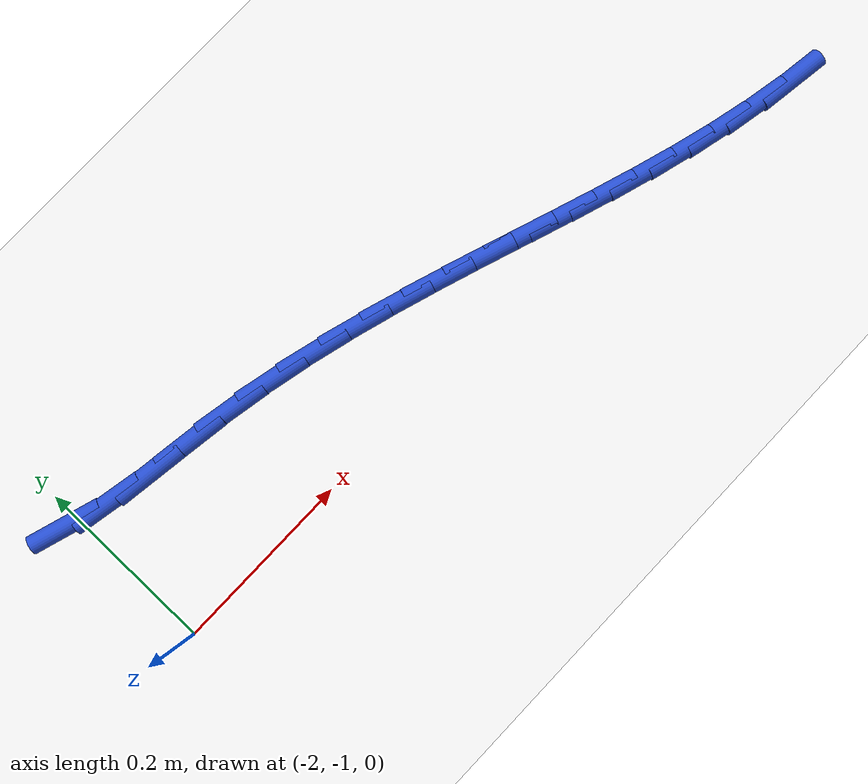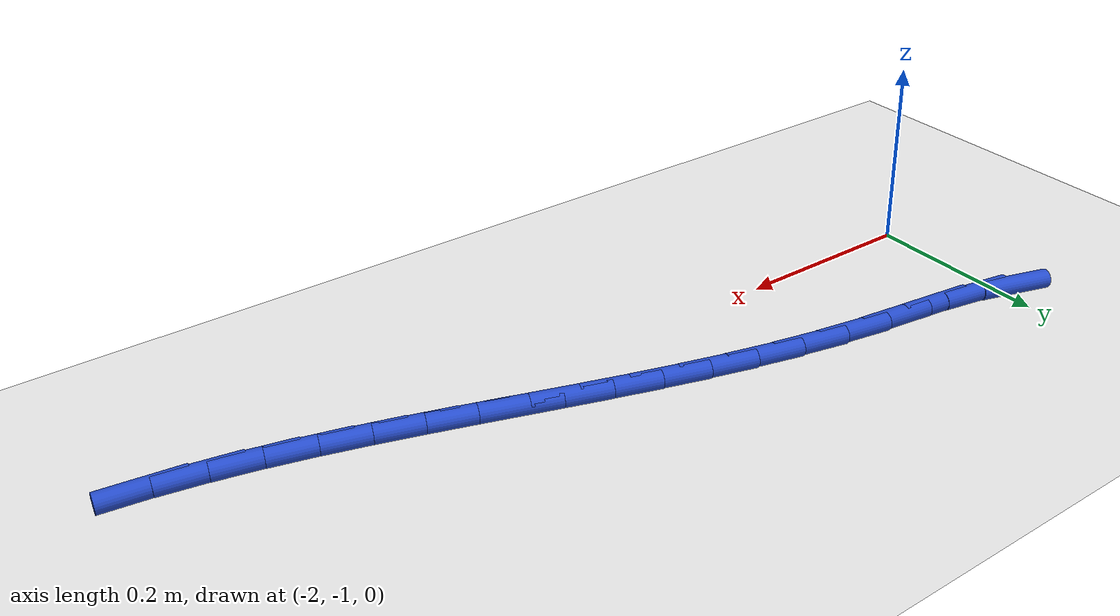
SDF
<sdf version="1.6">
 <world name="default">
  <model name="ground_plane">
   <static>1</static>
   <link name="link">
    <collision name="collision">
     <geometry><plane><normal>0 0 1</normal><size>100 100</size></plane></geometry>
     <surface><friction><ode><mu>100</mu><mu2>50</mu2></ode></friction></surface>
    </collision>
    <visual name="visual">
     <cast_shadows>0</cast_shadows>
     <geometry><plane><normal>0 0 1</normal><size>100 100</size></plane></geometry>
     <material>
      <script><uri>file://media/materials/scripts/gazebo.material</uri><name>Gazebo/WhiteGlow</name></script>
     </material>
    </visual>
   </link>
  </model>
  <model name="line">
   <link name="link_96">
    <pose>-2.010482380553437 -0.8308845833081798 0.01 0 1.57 -0.3005788225097273</pose>
    <collision name="collision">
     <geometry><cylinder><radius>0.01</radius><length>0.08</length></cylinder></geometry>
    </collision>
    <visual name="visual">
     <material>
      <script><name>Gazebo/Blue</name><uri>file://media/materials/scripts/gazebo.material</uri></script>
     </material>
     <geometry><cylinder><radius>0.01</radius><length>0.08</length></cylinder></geometry>
    </visual>
   </link>
   <link name="link_97">
    <pose>-1.9649217299206478 -0.8450070442757859 0.01 0 1.57 -0.18554496461845713</pose>
    <collision name="collision">
     <geometry><cylinder><radius>0.01</radius><length>0.08</length></cylinder></geometry>
    </collision>
    <visual name="visual">
     <material>
      <script><name>Gazebo/Blue</name><uri>file://media/materials/scripts/gazebo.material</uri></script>
     </material>
     <geometry><cylinder><radius>0.01</radius><length>0.08</length></cylinder></geometry>
    </visual>
   </link>
   <link name="link_98">
    <pose>-1.9151097376758917 -0.8543569519005184 0.01 0 1.57 -0.13654329080140443</pose>
    <collision name="collision">
     <geometry><cylinder><radius>0.01</radius><length>0.08</length></cylinder></geometry>
    </collision>
    <visual name="visual">
     <material>
      <script><name>Gazebo/Blue</name><uri>file://media/materials/scripts/gazebo.material</uri></script>
     </material>
     <geometry><cylinder><radius>0.01</radius><length>0.08</length></cylinder></geometry>
    </visual>
   </link>
   <link name="link_99">
    <pose>-1.863141505967913 -0.8614972955514869 0.01 0 1.57 -0.14283297907920878</pose>
    <collision name="collision">
     <geometry><cylinder><radius>0.01</radius><length>0.08</length></cylinder></geometry>
    </collision>
    <visual name="visual">
     <material>
      <script><name>Gazebo/Blue</name><uri>file://media/materials/scripts/gazebo.material</uri></script>
     </material>
     <geometry><cylinder><radius>0.01</radius><length>0.08</length></cylinder></geometry>
    </visual>
   </link>
   <link name="link_100">
    <pose>-1.8111041834318575 -0.8689809023736115 0.01 0 1.57 -0.1835344589999442</pose>
    <collision name="collision">
     <geometry><cylinder><radius>0.01</radius><length>0.08</length></cylinder></geometry>
    </collision>
    <visual name="visual">
     <material>
      <script><name>Gazebo/Blue</name><uri>file://media/materials/scripts/gazebo.material</uri></script>
     </material>
     <geometry><cylinder><radius>0.01</radius><length>0.08</length></cylinder></geometry>
    </visual>
   </link>
   <link name="link_101">
    <pose>-1.7603366563446907 -0.878404542828432 0.01 0 1.57 -0.22315109329335348</pose>
    <collision name="collision">
     <geometry><cylinder><radius>0.01</radius><length>0.08</length></cylinder></geometry>
    </collision>
    <visual name="visual">
     <material>
      <script><name>Gazebo/Blue</name><uri>file://media/materials/scripts/gazebo.material</uri></script>
     </material>
     <geometry><cylinder><radius>0.01</radius><length>0.08</length></cylinder></geometry>
    </visual>
   </link>
   <link name="link_102">
    <pose>-1.7108274902762315 -0.8896396792383551 0.01 0 1.57 -0.257308073877102</pose>
    <collision name="collision">
     <geometry><cylinder><radius>0.01</radius><length>0.08</length></cylinder></geometry>
    </collision>
    <visual name="visual">
     <material>
      <script><name>Gazebo/Blue</name><uri>file://media/materials/scripts/gazebo.material</uri></script>
     </material>
     <geometry><cylinder><radius>0.01</radius><length>0.08</length></cylinder></geometry>
    </visual>
   </link>
   <link name="link_103">
    <pose>-1.6624235670533407 -0.9023767442536372 0.01 0 1.57 -0.2855279547823987</pose>
    <collision name="collision">
     <geometry><cylinder><radius>0.01</radius><length>0.08</length></cylinder></geometry>
    </collision>
    <visual name="visual">
     <material>
      <script><name>Gazebo/Blue</name><uri>file://media/materials/scripts/gazebo.material</uri></script>
     </material>
     <geometry><cylinder><radius>0.01</radius><length>0.08</length></cylinder></geometry>
    </visual>
   </link>
   <link name="link_104">
    <pose>-1.6149717685028775 -0.9163061705245337 0.01 0 1.57 -0.3074327179641019</pose>
    <collision name="collision">
     <geometry><cylinder><radius>0.01</radius><length>0.08</length></cylinder></geometry>
    </collision>
    <visual name="visual">
     <material>
      <script><name>Gazebo/Blue</name><uri>file://media/materials/scripts/gazebo.material</uri></script>
     </material>
     <geometry><cylinder><radius>0.01</radius><length>0.08</length></cylinder></geometry>
    </visual>
   </link>
   <link name="link_105">
    <pose>-1.568318976451701 -0.9311183907013016 0.01 0 1.57 -0.32272467713347425</pose>
    <collision name="collision">
     <geometry><cylinder><radius>0.01</radius><length>0.08</length></cylinder></geometry>
    </collision>
    <visual name="visual">
     <material>
      <script><name>Gazebo/Blue</name><uri>file://media/materials/scripts/gazebo.material</uri></script>
     </material>
     <geometry><cylinder><radius>0.01</radius><length>0.08</length></cylinder></geometry>
    </visual>
   </link>
   <link name="link_106">
    <pose>-1.5223120727266717 -0.9465038374341966 0.01 0 1.57 -0.33116725520258733</pose>
    <collision name="collision">
     <geometry><cylinder><radius>0.01</radius><length>0.08</length></cylinder></geometry>
    </collision>
    <visual name="visual">
     <material>
      <script><name>Gazebo/Blue</name><uri>file://media/materials/scripts/gazebo.material</uri></script>
     </material>
     <geometry><cylinder><radius>0.01</radius><length>0.08</length></cylinder></geometry>
    </visual>
   </link>
   <link name="link_107">
    <pose>-1.4767979391546477 -0.962152943373475 0.01 0 1.57 -0.33256961296599863</pose>
    <collision name="collision">
     <geometry><cylinder><radius>0.01</radius><length>0.08</length></cylinder></geometry>
    </collision>
    <visual name="visual">
     <material>
      <script><name>Gazebo/Blue</name><uri>file://media/materials/scripts/gazebo.material</uri></script>
     </material>
     <geometry><cylinder><radius>0.01</radius><length>0.08</length></cylinder></geometry>
    </visual>
   </link>
   <link name="link_108">
    <pose>-1.4316234575624895 -0.9777561411693931 0.01 0 1.57 -0.32677821492575226</pose>
    <collision name="collision">
     <geometry><cylinder><radius>0.01</radius><length>0.08</length></cylinder></geometry>
    </collision>
    <visual name="visual">
     <material>
      <script><name>Gazebo/Blue</name><uri>file://media/materials/scripts/gazebo.material</uri></script>
     </material>
     <geometry><cylinder><radius>0.01</radius><length>0.08</length></cylinder></geometry>
    </visual>
   </link>
   <link name="link_109">
    <pose>-1.3866355097770575 -0.9930038634722067 0.01 0 1.57 -0.31367763618859473</pose>
    <collision name="collision">
     <geometry><cylinder><radius>0.01</radius><length>0.08</length></cylinder></geometry>
    </collision>
    <visual name="visual">
     <material>
      <script><name>Gazebo/Blue</name><uri>file://media/materials/scripts/gazebo.material</uri></script>
     </material>
     <geometry><cylinder><radius>0.01</radius><length>0.08</length></cylinder></geometry>
    </visual>
   </link>
   <link name="link_110">
    <pose>-1.3416809776252099 -1.0075865429321722 0.01 0 1.57 -0.29320220966126315</pose>
    <collision name="collision">
     <geometry><cylinder><radius>0.01</radius><length>0.08</length></cylinder></geometry>
    </collision>
    <visual name="visual">
     <material>
      <script><name>Gazebo/Blue</name><uri>file://media/materials/scripts/gazebo.material</uri></script>
     </material>
     <geometry><cylinder><radius>0.01</radius><length>0.08</length></cylinder></geometry>
    </visual>
   </link>
   <link name="link_111">
    <pose>-1.2966067429338066 -1.0211946121995463 0.01 0 1.57 -0.26535924087067825</pose>
    <collision name="collision">
     <geometry><cylinder><radius>0.01</radius><length>0.08</length></cylinder></geometry>
    </collision>
    <visual name="visual">
     <material>
      <script><name>Gazebo/Blue</name><uri>file://media/materials/scripts/gazebo.material</uri></script>
     </material>
     <geometry><cylinder><radius>0.01</radius><length>0.08</length></cylinder></geometry>
    </visual>
   </link>
   <link name="link_112">
    <pose>-1.2512596875297086 -1.0335185039245842 0.01 0 1.57 -0.23026310330160144</pose>
    <collision name="collision">
     <geometry><cylinder><radius>0.01</radius><length>0.08</length></cylinder></geometry>
    </collision>
    <visual name="visual">
     <material>
      <script><name>Gazebo/Blue</name><uri>file://media/materials/scripts/gazebo.material</uri></script>
     </material>
     <geometry><cylinder><radius>0.01</radius><length>0.08</length></cylinder></geometry>
    </visual>
   </link>
   <link name="link_113">
    <pose>-1.2054866932397732 -1.0442486507575424 0.01 0 1.57 -0.18817721169585339</pose>
    <collision name="collision">
     <geometry><cylinder><radius>0.01</radius><length>0.08</length></cylinder></geometry>
    </collision>
    <visual name="visual">
     <material>
      <script><name>Gazebo/Blue</name><uri>file://media/materials/scripts/gazebo.material</uri></script>
     </material>
     <geometry><cylinder><radius>0.01</radius><length>0.08</length></cylinder></geometry>
    </visual>
   </link>
   <link name="link_114">
    <pose>-1.1591346418908626 -1.0530754853486777 0.01 0 1.57 -0.13955757850404654</pose>
    <collision name="collision">
     <geometry><cylinder><radius>0.01</radius><length>0.08</length></cylinder></geometry>
    </collision>
    <visual name="visual">
     <material>
      <script><name>Gazebo/Blue</name><uri>file://media/materials/scripts/gazebo.material</uri></script>
     </material>
     <geometry><cylinder><radius>0.01</radius><length>0.08</length></cylinder></geometry>
    </visual>
   </link>
  </model>
 </world>
</sdf>
